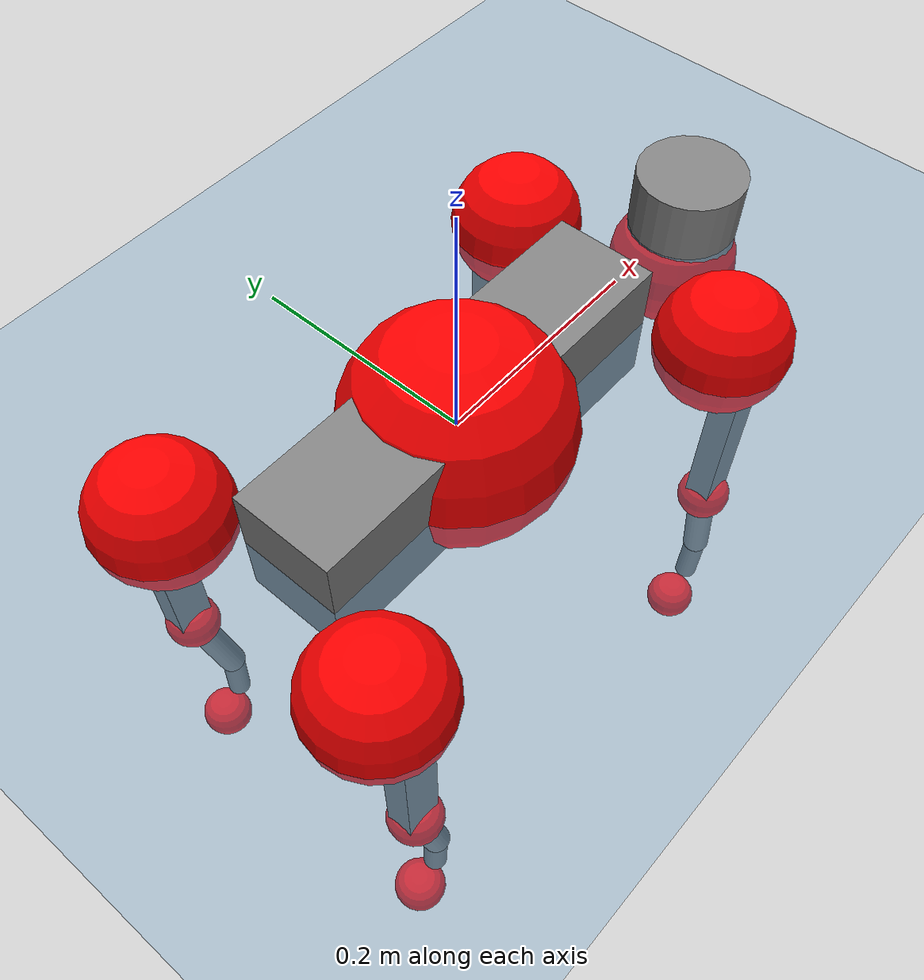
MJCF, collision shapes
<mujoco model="go2">
  <compiler angle="radian" assetdir="assets" balanceinertia="true" inertiafromgeom="false"/>

  <option timestep="0.005" density="1.2" viscosity="2e-05"/>

  <size nkey="1"/>

  <visual>
    <quality shadowsize="8192"/>
    <map shadowclip="0.5"/>
  </visual>

  <default>
    <default class="/">
      <geom contype="0" conaffinity="0" group="1" solref="-1000 -80"/>
      <site size="0.01 0.005 0.005" group="5"/>
      <general forcelimited="true" biastype="affine" gainprm="20" biasprm="0 -20 -0.5"/>
      <default class="go2">
        <joint armature="0.01" damping="0.01" frictionloss="0.2"/>
        <geom condim="1" margin="0.001"/>
        <default class="visual">
          <geom type="mesh" group="2"/>
        </default>
        <default class="collision">
          <geom group="3"/>
          <default class="foot">
            <geom size="0.022 0 0" condim="6" priority="1" friction="0.8 0.02 0.01" solimp="0.015 1 0.022"/>
          </default>
        </default>
        <default class="reward_collision_sphere">
          <geom group="5" rgba="1 0 0 1"/>
        </default>
      </default>
    </default>
  </default>

  <asset>
    <texture type="skybox" colorspace="auto" name="//unnamed_texture_0" builtin="gradient" rgb1="0.95 0.95 0.95" rgb2="0.95 0.95 0.95" width="100" height="600"/>
    <texture type="2d" colorspace="auto" name="texplane" builtin="checker" rgb1="0.345 0.575 0.748" rgb2="0.345 0.575 0.748" markrgb="1 1 1" width="512" height="512"/>
    <material name="MatPlane" class="/" texture="texplane" texuniform="true" texrepeat="2 2" specular="0.9"/>
    <material name="metal" class="/" rgba="0.9 0.95 0.95 1"/>
    <material name="black" class="/" rgba="0 0 0 1"/>
    <material name="white" class="/"/>
    <material name="gray" class="/" rgba="0.671705 0.692426 0.77427 1"/>
    <mesh name="base_0" class="/" file="base_0.obj"/>
    <mesh name="base_1" class="/" file="base_1.obj"/>
    <mesh name="base_2" class="/" file="base_2.obj"/>
    <mesh name="base_3" class="/" file="base_3.obj"/>
    <mesh name="base_4" class="/" file="base_4.obj"/>
    <mesh name="hip_0" class="/" file="hip_0.obj"/>
    <mesh name="hip_1" class="/" file="hip_1.obj"/>
    <mesh name="thigh_0" class="/" file="thigh_0.obj"/>
    <mesh name="thigh_1" class="/" file="thigh_1.obj"/>
    <mesh name="thigh_mirror_0" class="/" file="thigh_mirror_0.obj"/>
    <mesh name="thigh_mirror_1" class="/" file="thigh_mirror_1.obj"/>
    <mesh name="calf_0" class="/" file="calf_0.obj"/>
    <mesh name="calf_1" class="/" file="calf_1.obj"/>
    <mesh name="calf_mirror_0" class="/" file="calf_mirror_0.obj"/>
    <mesh name="calf_mirror_1" class="/" file="calf_mirror_1.obj"/>
    <mesh name="foot" class="/" file="foot.obj"/>
  </asset>

  <worldbody>
    <geom name="floor" class="/" size="100 100 0.125" type="plane" group="0" material="MatPlane"/>
    <light name="toplight_shadow" class="/" pos="0 0 5" dir="0.0990148 0.0990148 -0.990148" type="directional" ambient="0.04 0.04 0.04" diffuse="0.55 0.55 0.55" specular="0.12 0.12 0.12"/>
    <light name="toplight_fill" class="/" pos="0 0 5" dir="0.0990148 0.0990148 -0.990148" type="directional" castshadow="false" ambient="0.04 0.04 0.04" diffuse="0.3 0.3 0.3" specular="0.08 0.08 0.08"/>
    <body name="trunk" childclass="go2" pos="0.000164802 -0.000365653 0.000290339" quat="1 0.000172833 0.000140975 2.57489e-05">
      <inertial pos="0.0217832 2.78193e-05 -0.00489067" quat="-0.00379751 0.715417 -0.00281534 0.698682" mass="5.7557" diaginertia="0.131401 0.0618933 0.0127564"/>
      <joint name="//unnamed_joint_0" type="free" armature="0" damping="0" frictionloss="0"/>
      <geom name="//unnamed_geom_1" class="visual" material="black" mesh="base_0"/>
      <geom name="//unnamed_geom_2" class="visual" material="black" mesh="base_1"/>
      <geom name="//unnamed_geom_3" class="visual" material="black" mesh="base_2"/>
      <geom name="//unnamed_geom_4" class="visual" material="white" mesh="base_3"/>
      <geom name="//unnamed_geom_5" class="visual" material="gray" mesh="base_4"/>
      <geom name="trunk_1" class="collision" size="0.177678 0.0441597 0.0538417" type="box"/>
      <geom name="trunk_2" class="collision" size="0.0472296 0.0425066" pos="0.297036 0 0.00877371" type="cylinder"/>
      <geom name="trunk_3" class="collision" size="0.0443958" pos="0.305374 0 -0.0526423"/>
      <geom name="//unnamed_geom_9" class="reward_collision_sphere" size="0.0944592"/>
      <geom name="//unnamed_geom_10" class="reward_collision_sphere" size="0.0566755" pos="0.291825 0 -0.0394817"/>
      <site name="imu" pos="-0.0250666 -0.00120361 0.0333006" size="0.00944592"/>
      <camera name="track" pos="0 -1.82834 0" quat="0.707107 0.707107 0 0" mode="trackcom"/>
      <camera name="ego_camera" pos="0.325177 0 0.0394817" quat="-0.5 -0.5 0.5 0.5"/>
      <body name="FL_hip" pos="0.201004 0.0433496 0.00123982" quat="1 5.55381e-07 -9.84748e-08 1.11515e-07">
        <inertial pos="-0.00589747 0.00234015 -0.000324813" quat="0.497014 0.499018 0.505585 0.498339" mass="0.568996" diaginertia="0.00108245 0.000384739 0.000249696"/>
        <joint name="FL_hip_joint" pos="0 0 0" axis="0.999936 -0.0070857 0.008869" range="-1.04255 1.04959" armature="0.00910169" damping="0.00684126" frictionloss="0.181522"/>
        <geom name="//unnamed_geom_11" class="visual" material="metal" mesh="hip_0"/>
        <geom name="//unnamed_geom_12" class="visual" material="gray" mesh="hip_1"/>
        <geom name="//unnamed_geom_13" class="collision" size="0.0434512 0.0188918" pos="0 0.0731336 0" quat="0.707107 0.707107 0 0" type="cylinder"/>
        <geom name="//unnamed_geom_14" class="reward_collision_sphere" size="0.0566755" pos="0 0.0639919 0"/>
        <body name="FL_thigh" pos="0.000373585 0.0876231 0.00116741" quat="1 0.000417596 3.38075e-06 -4.9614e-06">
          <inertial pos="-0.0039946 -0.0201914 -0.0294578" quat="0.830018 0.0818692 -0.0179412 0.551404" mass="0.968427" diaginertia="0.00732246 0.00373339 0.000457423"/>
          <joint name="FL_thigh_joint" pos="0 0 0" axis="0.00175583 0.999996 -0.00215996" stiffness="0.00134363" range="-1.57972 3.49204" armature="0.00931549" damping="0.0106257" frictionloss="0.197637"/>
          <geom name="//unnamed_geom_15" class="visual" material="metal" mesh="thigh_0"/>
          <geom name="//unnamed_geom_16" class="visual" material="gray" mesh="thigh_1"/>
          <geom name="//unnamed_geom_17" class="collision" size="0.100599 0.0115712 0.0160581" pos="0 0 -0.0934401" quat="0.707107 0 0.707107 0" type="box"/>
          <body name="FL_calf" pos="-0.000431309 -0.0012698 -0.186916" quat="1 -0.000225816 0.000296385 -0.00017456">
            <inertial pos="0.0058814 -0.00100563 -0.123264" quat="0.709193 2.38228e-05 -0.00454624 0.705" mass="0.198714" diaginertia="0.00182433 0.000922596 2.73645e-05"/>
            <joint name="FL_calf_joint" pos="0 0 0" axis="0.00161735 0.999988 0.00457483" stiffness="0.00186091" range="-2.72716 -0.84348" armature="0.00947433" damping="0.00729571" frictionloss="0.18784"/>
            <geom name="//unnamed_geom_18" class="visual" material="gray" mesh="calf_0"/>
            <geom name="//unnamed_geom_19" class="visual" material="black" mesh="calf_1"/>
            <geom name="FL_calf0" class="collision" size="0.0113351 0.0566755" pos="0.00833787 0 -0.0526423" quat="0.994493 0 -0.104807 0" type="cylinder"/>
            <geom name="//unnamed_geom_21" class="collision" size="0.0103905 0.0306992" pos="0.0208447 0 -0.129851" quat="0.999688 0 0.0249974 0" type="cylinder"/>
            <geom name="//unnamed_geom_22" class="visual" pos="0 0 -0.18688" quat="1 0 0 0" material="black" mesh="foot"/>
            <geom name="FL_foot" class="foot" size="0.0168505" pos="-0.00208447 0 -0.18688"/>
            <geom name="//unnamed_geom_24" class="reward_collision_sphere" size="0.0236148"/>
            <geom name="//unnamed_geom_25" class="reward_collision_sphere" size="0.0236148" pos="-0.00208447 0 -0.18688"/>
            <site name="FL_foot" class="foot" pos="-0.00208447 0 -0.18688" size="0.00944592"/>
          </body>
        </body>
      </body>
      <body name="FR_hip" pos="0.201549 -0.0408074 -0.000209483" quat="1 2.18397e-05 0.000106405 -4.15371e-05">
        <inertial pos="-0.00445266 -0.001414 -0.00150499" quat="0.496993 0.502313 0.501159 0.49952" mass="0.57824" diaginertia="0.00110044 0.000387842 0.000251387"/>
        <joint name="FR_hip_joint" pos="0 0 0" axis="0.999998 0.00192315 0.000910605" stiffness="0.00633035" range="-1.05924 1.04685" armature="0.00942708" damping="0.0138022" frictionloss="0.190986"/>
        <geom name="//unnamed_geom_26" class="visual" pos="0 3.20578e-10 1.37502e-08" quat="4.63268e-05 1 0 0" material="metal" mesh="hip_0"/>
        <geom name="//unnamed_geom_27" class="visual" pos="0 5.19695e-10 -3.40096e-08" quat="4.63268e-05 1 0 0" material="gray" mesh="hip_1"/>
        <geom name="//unnamed_geom_28" class="collision" size="0.0434512 0.0188918" pos="0 -0.0731336 0" quat="0.707107 0.707107 0 0" type="cylinder"/>
        <geom name="//unnamed_geom_29" class="reward_collision_sphere" size="0.0566755" pos="0 -0.0639919 0"/>
        <body name="FR_thigh" pos="0.000236746 -0.0868951 -0.000322444" quat="1 -3.2017e-05 -5.12353e-06 -2.18576e-05">
          <inertial pos="-0.00296614 0.0218029 -0.028361" quat="0.551732 -0.0196619 0.0844592 0.829501" mass="0.970864" diaginertia="0.00727413 0.00374724 0.000456437"/>
          <joint name="FR_thigh_joint" pos="0 0 0" axis="-0.000901801 -0.999981 -0.00606963" range="-3.49442 1.55387" armature="0.00930114" damping="0.0135657" frictionloss="0.193812"/>
          <geom name="//unnamed_geom_30" class="visual" material="metal" mesh="thigh_mirror_0"/>
          <geom name="//unnamed_geom_31" class="visual" material="gray" mesh="thigh_mirror_1"/>
          <geom name="//unnamed_geom_32" class="collision" size="0.100599 0.0115712 0.0160581" pos="0 0 -0.0934401" quat="0.707107 0 0.707107 0" type="box"/>
          <body name="FR_calf" pos="-0.000421147 -0.000591451 -0.186799" quat="1 0.000249716 0.000303696 -0.000216047">
            <inertial pos="0.00791844 0.00155579 -0.124661" quat="0.703281 -0.00472022 -0.000786025 0.710896" mass="0.203006" diaginertia="0.00180527 0.00092963 2.78215e-05"/>
            <joint name="FR_calf_joint" pos="0 0 0" axis="-0.000115998 -1 -0.00077774" range="0.822394 2.72732" armature="0.00956419" damping="0.0104812" frictionloss="0.18956"/>
            <geom name="//unnamed_geom_33" class="visual" material="gray" mesh="calf_mirror_0"/>
            <geom name="//unnamed_geom_34" class="visual" material="black" mesh="calf_mirror_1"/>
            <geom name="FR_calf0" class="collision" size="0.0122797 0.0566755" pos="0.0104223 0 -0.0526423" quat="0.995004 0 -0.0998334 0" type="cylinder"/>
            <geom name="//unnamed_geom_36" class="collision" size="0.0103905 0.0306992" pos="0.0208447 0 -0.129851" quat="0.999688 0 0.0249974 0" type="cylinder"/>
            <geom name="//unnamed_geom_37" class="visual" pos="0 0 -0.18688" quat="1 0 0 0" material="black" mesh="foot"/>
            <geom name="FR_foot" class="foot" size="0.0220453" pos="-0.00208447 0 -0.18688"/>
            <geom name="//unnamed_geom_39" class="reward_collision_sphere" size="0.0236148"/>
            <geom name="//unnamed_geom_40" class="reward_collision_sphere" size="0.0236148" pos="-0.00208447 0 -0.18688"/>
            <site name="FR_foot" class="foot" pos="-0.00208447 0 -0.18688" size="0.00944592"/>
          </body>
        </body>
      </body>
      <body name="RL_hip" pos="-0.200287 0.0428689 0.000522407" quat="1 0.000236576 -9.80294e-06 -0.000337381">
        <inertial pos="0.00617939 0.00105049 8.17821e-05" quat="0.505459 0.498235 0.497012 0.499253" mass="0.577474" diaginertia="0.00108331 0.000381324 0.000250024"/>
        <joint name="RL_hip_joint" pos="0 0 0" axis="-0.999753 0.0161923 0.0152428" stiffness="8.46175e-05" range="-1.06369 1.04289" armature="0.00944849" damping="0.0130953" frictionloss="0.189819"/>
        <geom name="//unnamed_geom_41" class="visual" pos="-1.43621e-09 0 -2.8153e-07" quat="4.63268e-05 0 1 0" material="metal" mesh="hip_0"/>
        <geom name="//unnamed_geom_42" class="visual" pos="-2.32827e-09 0 -2.49677e-07" quat="4.63268e-05 0 1 0" material="gray" mesh="hip_1"/>
        <geom name="//unnamed_geom_43" class="collision" size="0.0434512 0.0188918" pos="0 0.0731336 0" quat="0.707107 0.707107 0 0" type="cylinder"/>
        <geom name="//unnamed_geom_44" class="reward_collision_sphere" size="0.0566755" pos="0 0.0639919 0"/>
        <body name="RL_thigh" pos="-0.00112186 0.0859844 0.00112788" quat="1 -8.15424e-05 0.000105767 6.93946e-05">
          <inertial pos="-0.0032823 -0.0193734 -0.0291018" quat="0.828518 0.0868197 -0.0197886 0.552838" mass="0.96831" diaginertia="0.00732704 0.00368153 0.000446596"/>
          <joint name="RL_thigh_joint" pos="0 0 0" axis="-0.00135911 0.999998 0.00128805" range="-0.539091 4.51923" armature="0.00964186" damping="0.00842384" frictionloss="0.187505"/>
          <geom name="//unnamed_geom_45" class="visual" material="metal" mesh="thigh_0"/>
          <geom name="//unnamed_geom_46" class="visual" material="gray" mesh="thigh_1"/>
          <geom name="//unnamed_geom_47" class="collision" size="0.100599 0.0115712 0.0160581" pos="0 0 -0.0934401" quat="0.707107 0 0.707107 0" type="box"/>
          <body name="RL_calf" pos="0.000939355 -0.00105765 -0.187804" quat="1 0.000313753 0.0003105 -6.07647e-05">
            <inertial pos="0.00636444 -0.000523204 -0.122595" quat="0.713671 0.001658 -0.00304538 0.700473" mass="0.202701" diaginertia="0.00183329 0.000942853 2.76439e-05"/>
            <joint name="RL_calf_joint" pos="0 0 0" axis="-0.00150667 0.999994 0.0029753" stiffness="0.00462031" range="-2.71096 -0.820002" armature="0.00968921" damping="0" frictionloss="0.193656"/>
            <geom name="//unnamed_geom_48" class="visual" material="gray" mesh="calf_0"/>
            <geom name="//unnamed_geom_49" class="visual" material="black" mesh="calf_1"/>
            <geom name="RL_calf0" class="collision" size="0.0122797 0.0566755" pos="0.0104223 0 -0.0526423" quat="0.995004 0 -0.0998334 0" type="cylinder"/>
            <geom name="//unnamed_geom_51" class="collision" size="0.0103905 0.0306992" pos="0.0208447 0 -0.129851" quat="0.999688 0 0.0249974 0" type="cylinder"/>
            <geom name="//unnamed_geom_52" class="visual" pos="0 0 -0.18688" quat="1 0 0 0" material="black" mesh="foot"/>
            <geom name="RL_foot" class="foot" size="0.0181671" pos="-0.00208447 0 -0.18688"/>
            <geom name="//unnamed_geom_54" class="reward_collision_sphere" size="0.0236148"/>
            <geom name="//unnamed_geom_55" class="reward_collision_sphere" size="0.0236148" pos="-0.00208447 0 -0.18688"/>
            <site name="RL_foot" class="foot" pos="-0.00208447 0 -0.18688" size="0.00944592"/>
          </body>
        </body>
      </body>
      <body name="RR_hip" pos="-0.202547 -0.0431998 -0.00161108" quat="1 1.72637e-05 -1.58189e-05 8.72355e-05">
        <inertial pos="0.00471411 -0.00256749 0.000295567" quat="0.49712 0.497755 0.49715 0.50789" mass="0.567595" diaginertia="0.00106813 0.000374106 0.000245205"/>
        <joint name="RR_hip_joint" pos="0 0 0" axis="-0.999986 0.00523188 0.000870269" range="-1.04439 1.04965" armature="0.00944579" damping="0.00311551" frictionloss="0.190386"/>
        <geom name="//unnamed_geom_56" class="visual" pos="1.43177e-09 3.20578e-10 -2.9528e-07" quat="2.14617e-09 4.63268e-05 4.63268e-05 -1" material="metal" mesh="hip_0"/>
        <geom name="//unnamed_geom_57" class="visual" pos="2.33923e-09 5.19695e-10 -2.15667e-07" quat="2.14617e-09 4.63268e-05 4.63268e-05 -1" material="gray" mesh="hip_1"/>
        <geom name="//unnamed_geom_58" class="collision" size="0.0434512 0.0188918" pos="0 -0.0731336 0" quat="0.707107 0.707107 0 0" type="cylinder"/>
        <geom name="//unnamed_geom_59" class="reward_collision_sphere" size="0.0566755" pos="0 -0.0639919 0"/>
        <body name="RR_thigh" pos="0.000215759 -0.0877859 -0.000952804" quat="1 -5.9162e-05 7.32183e-05 -4.47281e-05">
          <inertial pos="-0.00323812 0.0207356 -0.0285798" quat="0.5496 -0.0244097 0.0876605 0.830458" mass="0.968151" diaginertia="0.00735743 0.0037281 0.000464874"/>
          <joint name="RR_thigh_joint" pos="0 0 0" axis="0.00184464 -0.999998 0.000513187" stiffness="0.00123695" range="-4.53845 0.521373" armature="0.00936645" damping="0.0155503" frictionloss="0.196616"/>
          <geom name="//unnamed_geom_60" class="visual" material="metal" mesh="thigh_mirror_0"/>
          <geom name="//unnamed_geom_61" class="visual" material="gray" mesh="thigh_mirror_1"/>
          <geom name="//unnamed_geom_62" class="collision" size="0.100599 0.0115712 0.0160581" pos="0 0 -0.0934401" quat="0.707107 0 0.707107 0" type="box"/>
          <body name="RR_calf" pos="0.000993076 -0.000745585 -0.187666" quat="1 7.36036e-06 1.0175e-06 3.10581e-06">
            <inertial pos="0.00627146 -0.000302712 -0.123615" quat="0.702846 -0.00451633 0.000260937 0.711328" mass="0.203281" diaginertia="0.00185455 0.000935212 2.76476e-05"/>
            <joint name="RR_calf_joint" pos="0 0 0" axis="0.00326659 -0.999995 -0.000197477" range="0.83963 2.73869" armature="0.00946831" damping="0.00958771" frictionloss="0.195293"/>
            <geom name="//unnamed_geom_63" class="visual" material="gray" mesh="calf_mirror_0"/>
            <geom name="//unnamed_geom_64" class="visual" material="black" mesh="calf_mirror_1"/>
            <geom name="RR_calf0" class="collision" size="0.0122797 0.0566755" pos="0.0104223 0 -0.0526423" quat="0.995004 0 -0.0998334 0" type="cylinder"/>
            <geom name="//unnamed_geom_66" class="collision" size="0.0103905 0.0306992" pos="0.0208447 0 -0.129851" quat="0.999688 0 0.0249974 0" type="cylinder"/>
            <geom name="//unnamed_geom_67" class="visual" pos="0 0 -0.18688" quat="1 0 0 0" material="black" mesh="foot"/>
            <geom name="RR_foot" class="foot" size="0.0219855" pos="-0.00208447 0 -0.18688"/>
            <geom name="//unnamed_geom_69" class="reward_collision_sphere" size="0.0236148"/>
            <geom name="//unnamed_geom_70" class="reward_collision_sphere" size="0.0236148" pos="-0.00208447 0 -0.18688"/>
            <site name="RR_foot" class="foot" pos="-0.00208447 0 -0.18688" size="0.00944592"/>
          </body>
        </body>
      </body>
    </body>
  </worldbody>

  <contact>
    <pair class="/" geom1="floor" geom2="FL_foot" name="//unnamed_contact_0"/>
    <pair class="/" geom1="floor" geom2="FR_foot" name="//unnamed_contact_1"/>
    <pair class="/" geom1="floor" geom2="RL_foot" name="//unnamed_contact_2"/>
    <pair class="/" geom1="floor" geom2="RR_foot" name="//unnamed_contact_3"/>
  </contact>

  <actuator>
    <general name="FL_hip" class="/" joint="FL_hip_joint" forcerange="-22.3712 22.3712" gainprm="18.9197" biasprm="0 -18.9197 -0.477174"/>
    <general name="FL_thigh" class="/" joint="FL_thigh_joint" forcerange="-22.5539 22.5539" gainprm="18.9197" biasprm="0 -18.9197 -0.477174"/>
    <general name="FL_calf" class="/" joint="FL_calf_joint" forcerange="-41.4171 41.4171" gainprm="18.9197" biasprm="0 -18.9197 -0.477174"/>
    <general name="FR_hip" class="/" joint="FR_hip_joint" forcerange="-22.2917 22.2917" gainprm="18.9197" biasprm="0 -18.9197 -0.477174"/>
    <general name="FR_thigh" class="/" joint="FR_thigh_joint" forcerange="-22.3328 22.3328" gainprm="18.9197" biasprm="0 -18.9197 -0.477174"/>
    <general name="FR_calf" class="/" joint="FR_calf_joint" forcerange="-41.5065 41.5065" gainprm="18.9197" biasprm="0 -18.9197 -0.477174"/>
    <general name="RL_hip" class="/" joint="RL_hip_joint" forcerange="-22.4371 22.4371" gainprm="18.9197" biasprm="0 -18.9197 -0.477174"/>
    <general name="RL_thigh" class="/" joint="RL_thigh_joint" forcerange="-21.6862 21.6862" gainprm="18.9197" biasprm="0 -18.9197 -0.477174"/>
    <general name="RL_calf" class="/" joint="RL_calf_joint" forcerange="-44.07 44.07" gainprm="18.9197" biasprm="0 -18.9197 -0.477174"/>
    <general name="RR_hip" class="/" joint="RR_hip_joint" forcerange="-22.6786 22.6786" gainprm="18.9197" biasprm="0 -18.9197 -0.477174"/>
    <general name="RR_thigh" class="/" joint="RR_thigh_joint" forcerange="-22.5329 22.5329" gainprm="18.9197" biasprm="0 -18.9197 -0.477174"/>
    <general name="RR_calf" class="/" joint="RR_calf_joint" forcerange="-41.1962 41.1962" gainprm="18.9197" biasprm="0 -18.9197 -0.477174"/>
  </actuator>

  <sensor>
    <gyro site="imu" name="imu_angular_velocity"/>
    <velocimeter site="imu" name="imu_linear_velocity"/>
    <framelinvel objtype="site" objname="FL_foot" name="FL_foot_global_linear_velocity"/>
    <framelinvel objtype="site" objname="FR_foot" name="FR_foot_global_linear_velocity"/>
    <framelinvel objtype="site" objname="RL_foot" name="RL_foot_global_linear_velocity"/>
    <framelinvel objtype="site" objname="RR_foot" name="RR_foot_global_linear_velocity"/>
  </sensor>

  <keyframe>
    <key name="home" qpos="0 0 0.325 1 0 0 0 0.1 0.8 -1.5 -0.1 -0.8 1.5 -0.1 0.8 -1.5 0.1 -0.8 1.5"/>
  </keyframe>
</mujoco>
